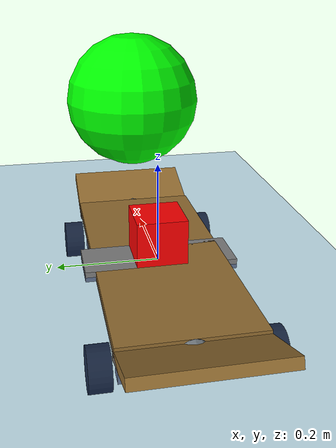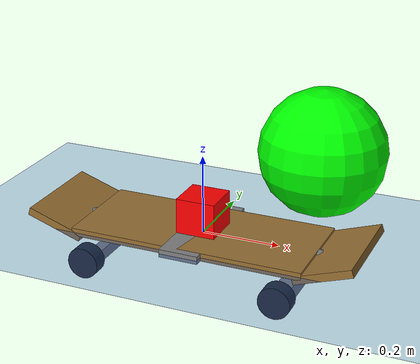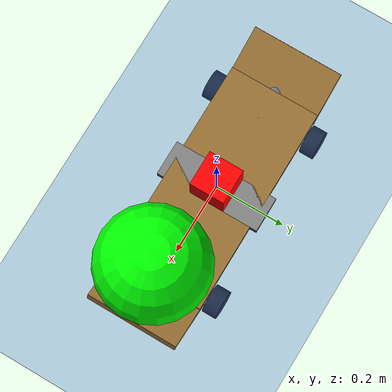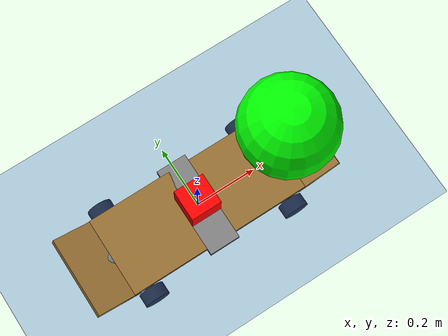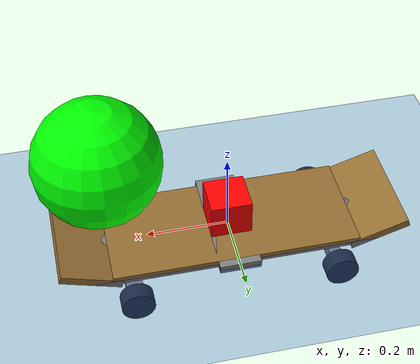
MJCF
<mujoco model="Skateboard NoRider">
  <include file="../../common.xml"/>
  <include file="../skateboard.xml" />
  <size memory="800K"/>

  <custom>
    <numeric name="agent_planner" data="3" />
    <numeric name="agent_horizon" data="1.35" />
    <numeric name="agent_timestep" data="0.015" />
    <numeric name="sampling_spline_points" data="3" />
    <numeric name="sampling_exploration" data="0.05" />
    <numeric name="gradient_spline_points" data="5" />
    <numeric name="residual_Heading" data="0.0 -1.57079 +1.57079" />
    <numeric name="residual_Velocity" data="0.0 -3 +3" />
  </custom>

  <default>
    <default class="wheel-spin">
        <joint type="hinge" axis="0 1 0" limited="false"  damping="1" stiffness="50" />
        <motor ctrllimited="true" ctrlrange="-1 1" gear="5"/>
      </default>
    <default class="no-rider">
      <default class="no-rider-slider">
          <joint type="slide" limited="true" stiffness="0" damping="1" frictionloss="0" armature="0" range="-0.1 0.1"/>
        <motor ctrllimited="true" ctrlrange="-1 1" gear="200" />
      </default>
      <default class="no-rider-ball">
        <joint type="ball" limited="false" damping="3"/>
      </default>
    </default>
  </default>

  <worldbody>
    <camera name="side" mode="trackcom" pos="-3.794 -2.634 2.085" xyaxes="0.536 -0.844 0.000 0.294 0.187 0.937"/>
    <camera name="close" mode="trackcom"  pos="-1.695 -1.870 1.312" xyaxes="0.702 -0.713 -0.000 0.261 0.257 0.930"/>
    <camera name="top" mode="trackcom" pos="-0.405 -1.688 20.714" xyaxes="-0.008 -1.000 0.000 1.000 -0.008 0.017"/>

    <body name="goal" mocap="true" pos=".3 0 0.26">
      <geom size="0.15" contype="0" conaffinity="0" rgba="0 1 0 1" group="2"/>
    </body>
    <geom name="floor" type="plane" conaffinity="1" size="50 50 .05" material="blue_grid"/>

    <body name="no-rider" pos="0 0 0" childclass="no-rider">
      <geom name="no-rider" type="box" size="0.05 0.15 0.01"  mass="1"/>
      <freejoint/>
      <!-- y-axis slider for weight transfer -->
      <body name="weight-slider" pos="0 0 0.05">
        <geom name="no-rider-weight" type="box" size="0.05 0.05 0.05"  mass="40.8" rgba="1 0 0 1"/>  <!-- `40.8` for the mass of humanoid -->
        <joint name="no-rider-y" axis="0 1 0" class="no-rider-slider"/>
      </body>
    </body>
  </worldbody>

  <equality>
    <!-- weld to board_center for balancing-->
    <weld body1="no-rider" body2="board_center" relpose="0 1 0 0 0 0 0" anchor="0 0 0"/>
  </equality>

  <sensor>
    <user name="Velocity" dim="1" user="0 10.0 0 100.0" />
    <user name="Goal Position" dim="3" user="2 0.2 0 0.5 0.1" />
    <user name="Goal Orientation" dim="1" user="0 10.0 0 100.0" />

    <user name="Upright" dim="1" user="0 10.0 0 100.0" />

    <user name="Joint Vel." dim="3" user="0 0 0.0 0.1" />
    <user name="Control" dim="2" user="3 0.03 0.0 0.1 0.3" />

    <framepos name="trace0" objtype="body" objname="board"/>
    <framelinvel name="board_linvel" objtype="body" objname="board" />
    <frameangvel name="board_angvel" objtype="body" objname="board"/>
  </sensor>

  <actuator>
    <!-- Control the y-translation of the cube for weight shift -->
    <motor name="no-rider-y" joint="no-rider-y" class="no-rider-slider" />
    <motor name="wheel-front-left" joint="wheel-front-left" class="wheel-spin" />
  </actuator>

   <keyframe>
    <key name="home" qpos='5.43295e-05 0.0118274 0.138635 1 -0.000151644 -3.16902e-10 -4.3344e-06 0.00375642 0.00278779 0.686686 0.838409 0.00278779 -0.683914 -0.835796 5.42464e-05 0.0151123 0.15811 0.999997 0.00234836 -1.62942e-08 -2.05345e-06 -0.0167769'/>
  </keyframe>

</mujoco>

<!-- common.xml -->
<mujoco>

    <visual>
        <headlight ambient=".4 .4 .4" diffuse=".8 .8 .8" specular="0.1 0.1 0.1"/>
        <map znear=".01"/>
        <quality shadowsize="2048"/>
        <global elevation="-15"/>
    </visual>

    <asset>
        <texture name="blue_grid" type="2d" builtin="checker" rgb1=".02 .14 .44" rgb2=".27 .55 1" width="300" height="300" mark="edge" markrgb="1 1 1"/>
        <material name="blue_grid" texture="blue_grid" texrepeat="1 1" texuniform="true" reflectance=".2"/>

        <texture name="grey_grid" type="2d" builtin="checker" rgb1=".26 .26 .26" rgb2=".6 .6 .6" width="300" height="300" mark="edge" markrgb="1 1 1"/>
        <material name="grey_grid" texture="grey_grid" texrepeat="1 1" texuniform="true" reflectance=".2"/>
        <texture name="skybox" type="skybox" builtin="gradient" rgb1=".66 .79 1" rgb2=".9 .91 .93" width="800" height="800"/>

        <material name="self" rgba=".7 .5 .3 1"/>
        <material name="self_default" rgba=".7 .5 .3 1"/>
        <material name="self_highlight" rgba="0 .5 .3 1"/>
        <material name="effector" rgba=".7 .4 .2 1"/>
        <material name="effector_default" rgba=".7 .4 .2 1"/>
        <material name="effector_highlight" rgba="0 .5 .3 1"/>
        <material name="decoration" rgba=".2 .6 .3 1"/>
        <material name="eye" rgba="0 .2 1 1"/>
        <material name="target" rgba=".6 .3 .3 1"/>
        <material name="target_default" rgba=".6 .3 .3 1"/>
        <material name="target_highlight" rgba=".6 .3 .3 .4"/>
        <material name="site" rgba=".5 .5 .5 .3"/>
    </asset>

    <size memory="1M"/>

    <statistic extent="0.4" center="0.3 0.1 0"/>

    <visual>
        <quality shadowsize="8192"/>
        <global azimuth="180" elevation="-30"/>
    </visual>

    <default>
        <geom friction="1.0"/>
    </default>

    <compiler angle="radian" autolimits="true"/>

    <asset>
        <mesh name="apple" file="../../shared_assets/apple/apple.obj" />
        <mesh name="apple_contact0" file="../../shared_assets/apple/contact0.stl"  />
        <mesh name="apple_contact1" file="../../shared_assets/apple/contact1.stl"  />

        <mesh name="doorknob" file="../../shared_assets/doorknob/doorknob.obj" />

        <mesh name="flashlight" file="../../shared_assets/flashlight/flashlight.obj" />
        <mesh name="flashlight_contact0" file="../../shared_assets/flashlight/contact0.stl"  />
        <mesh name="flashlight_contact1" file="../../shared_assets/flashlight/contact1.stl"  />

        <mesh name="hammer" file="../../shared_assets/hammer/hammer.obj" />
        <mesh name="hammer_contact0" file="../../shared_assets/hammer/contact0.stl"  />
        <mesh name="hammer_contact1" file="../../shared_assets/hammer/contact1.stl"  />

        <mesh name="phone" file="../../shared_assets/phone/phone.obj" />
        <mesh name="phone_contact0" file="../../shared_assets/phone/contact0.stl"  />
        <mesh name="phone_contact1" file="../../shared_assets/phone/contact1.stl"  />
        <mesh name="phone_contact2" file="../../shared_assets/phone/contact2.stl"  />

        <mesh name="stapler" file="../../shared_assets/stapler/stapler.obj" />
        <mesh name="stapler_contact0" file="../../shared_assets/stapler/contact0.stl"  />
        <mesh name="stapler_contact1" file="../../shared_assets/stapler/contact1.stl"  />
        <mesh name="stapler_contact2" file="../../shared_assets/stapler/contact2.stl"  />
        <mesh name="stapler_contact3" file="../../shared_assets/stapler/contact3.stl"  />
        <mesh name="stapler_contact4" file="../../shared_assets/stapler/contact4.stl"  />

        <mesh name="waterbottle" file="../../shared_assets/waterbottle/waterbottle.obj" />
        <mesh name="waterbottle_contact0" file="../../shared_assets/waterbottle/contact0.stl"  />
        <mesh name="waterbottle_contact1" file="../../shared_assets/waterbottle/contact1.stl"  />
    </asset>

</mujoco>

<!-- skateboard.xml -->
<mujoco model="skateboard">
  <default>
    <default class="skateboard">
      <default class="truck">
        <geom type="capsule" size="0.03" rgba="0.4414 0.4727 0.4922 1"/>
      </default>
      <default class="hanger">
        <geom type="capsule" fromto="0.0 0.1 -0.05 0.0 -0.1 -0.05" size="0.015" rgba="0.4414 0.4727 0.4922 1"/>
      </default>
      <default class="wheel">
        <geom type="sphere" size="0.03" rgba="0.8867 0.2383 0.5781 1"/>
      </default>
      <default class="board-base-ball">
        <default class="board-slider">
          <joint type="slide" limited="false" stiffness="0" damping="1" frictionloss="0" armature="0"/>
          <motor ctrllimited="true" ctrlrange="-1 1" gear="50" />
        </default>
        <default class="board-ball">
          <joint type="ball" limited="false" damping="3"/>
        </default>
      </default>

      <default class="hanger-rotate">
        <joint type="hinge" axis="0 0 1" range="-1 1" limited="true" damping="2" stiffness="50"/>
      </default>
      <default class="hanger-rotate-back">
        <joint type="hinge" axis="0 0 -1" range="-1 1" limited="true" damping="2" stiffness="50"/>
      </default>
      <default class="board-tilt">
        <joint type="hinge" axis="-1 0 0" range="-10 10" limited="true" springdamper="10 10"/>
      </default>
    </default>

    <default class="tracking_site_board">
      <site type="sphere" size="0.027" rgba="1 0 0 1" group="3"/>
    </default>
  </default>

  <worldbody>
    <camera name="back-x" pos="-3 0 2" xyaxes="0 -1 0 1 0 2" mode="trackcom"/>
    <camera name="side-y" pos="0 -3 2" xyaxes="1 0 0 0 1 2" mode="trackcom"/>
    <camera name="far_chase" pos="-6.134 -6.556 5.138" xyaxes="0.746 -0.666 0.000 0.283 0.317 0.905" mode="trackcom"/>

    <body name="skateboard" pos="0 0 0">
      <freejoint/>
      <!-- board -->
      <body name="board">
        <joint name="board-tilt" class="board-tilt"/>
        <!-- joint board-tilt -->
        <body name="board_center">
          <geom name="board-base" type="box" friction="2 1 1" size="0.3 0.13 0.01" rgba="0.5859 0.4336 0.1992 1" />
        </body>
        <geom name="board-nose" type="box" friction="2 1 1" size="0.075 0.13 0.01" pos="0.35 0.0 0.01" quat="-0.9659 0 0.1588 0" rgba="0.5859 0.4336 0.1992 1"/>
        <geom name="board-tail" type="box" friction="2 1 1" size="0.075 0.13 0.01" pos="-0.35 0.0 0.01" quat="0.9659 0 0.1588 0" rgba="0.5859 0.4336 0.1992 1"/>
      </body>
      <!-- trucks -->
      <geom name="truck-nose" class="truck" fromto="0.20 0.0 -0.020 0.30 0.0 -0.020" mass="5"/>
      <geom name="truck-tail" class="truck" fromto="-0.20 0.0 -0.020 -0.30 0.0 -0.020" mass="5"/>

      <!-- Baseplate -->
      <body name="baseplate-front" pos="0.25 0.0 -0.01">
        <!-- rotate -->
        <body name="kingpin-front" pos="0 0 -0.01">
          <site name="track-front-plate" class="tracking_site_board"  pos="-0.05 0.00 0.05" />
          <geom type="capsule" fromto="0 0 0 0 0 -0.02" size="0.01" rgba="0.5 0.5 0.5 1"/>
          <joint name="hanger-rotate" class="hanger-rotate"/>
          <!-- Bushings and hanger -->
          <body name="bushings-and-hanger-front" pos="0 0 -0.02">
            <geom name="bottom-bushing-front" type="ellipsoid" size="0.03 0.03 0.01" rgba="1 0 0 1"/>
            <geom name="hanger-front" type="box" size="0.02 0.12 0.02" pos="0 0 -0.03" rgba="0.5 0.5 0.5 1"/>
            <!-- Wheels -->
            <body name="wheel-front-left" pos="0.0 0.15 -0.02" >
              <joint name="wheel-front-left" type="hinge" axis="0 1 0"/>
              <geom type="cylinder" friction="1 0.005 0.2" size="0.04 0.02" rgba="0.1 0.1 0.1 1" quat="0.707 0.707 0 0"/>

            </body>
            <body name="wheel-front-right" pos="0.0 -0.15 -0.02">
              <joint name="wheel-front-right" type="hinge" axis="0 1 0"/>
              <geom type="cylinder" friction="1 0.005 0.2" size="0.04 0.02" rgba="0.1 0.1 0.1 1" quat="0.707 0.707 0 0"/>
            </body>
          </body>
        </body>
      </body>
      <!-- identical but for back truck -->
      <body name="baseplate-back" pos="-0.25 0.0 -0.01">
        <body name="kingpin-back" pos="0 0 -0.01">
          <site name="track-back-plate" class="tracking_site_board"  pos="0.05 0.00 0.05" />
          <geom type="capsule" fromto="0 0 0 0 0 -0.02" size="0.01" rgba="0.5 0.5 0.5 1"/>
          <joint name="hanger-rotate-back" class="hanger-rotate-back"/>
          <!-- Bushings and hanger -->
          <body name="bushings-and-hanger-back" pos="0 0 -0.02">
            <geom name="bottom-bushing-back" type="ellipsoid" size="0.03 0.03 0.01" rgba="1 0 0 1"/>
            <geom name="hanger-back" type="box" size="0.015 0.12 0.015" pos="0 0 -0.03" rgba="0.5 0.5 0.5 1"/>

            <!-- Wheels -->
            <body name="wheel-back-left" pos="0.0 0.15 -0.02">
              <joint name="wheel-back-left" type="hinge" axis="0 1 0"/>
              <geom type="cylinder" friction="1 0.005 0.2" size="0.04 0.02" rgba="0.1 0.1 0.1 1" quat="0.707 0.707 0 0"/>
            </body>
            <body name="wheel-back-right" pos="0.0 -0.15 -0.02">
              <joint name="wheel-back-right" type="hinge" axis="0 1 0"/>
              <geom type="cylinder" friction="1 0.005 0.2" size="0.04 0.02" rgba="0.1 0.1 0.1 1" quat="0.707 0.707 0 0"/>
            </body>
          </body>
        </body>
      </body>
    </body>
  </worldbody>
  <!-- equality/joint between hanger-rotate and hanger-rotate-back -->
  <equality>
    <joint joint1="board-tilt" joint2="hanger-rotate-back" polycoef="0 1 0 0 0"/>
    <joint joint1="board-tilt" joint2="hanger-rotate" polycoef="0 1 0 0 0"/>
    <!-- equal the wheel joints -->
    <joint joint1="wheel-front-left" joint2="wheel-front-right"/>
    <joint joint1="wheel-front-left" joint2="wheel-back-right"/>
    <joint joint1="wheel-front-left" joint2="wheel-back-left"/>
  </equality>
  <!-- exlude contact between all board parts,   trucks and kingpins and hangars -->
  <contact>
        <exclude body1="board" body2="baseplate-front"/>
        <exclude body1="board" body2="baseplate-back"/>
        <exclude body1="board" body2="wheel-front-left"/>
        <exclude body1="board" body2="wheel-front-right"/>
        <exclude body1="board" body2="wheel-back-left"/>
        <exclude body1="board" body2="wheel-back-right"/>
        <exclude body1="board" body2="kingpin-front"/>
        <exclude body1="board" body2="kingpin-back"/>
        <exclude body1="board" body2="bushings-and-hanger-front"/>
        <exclude body1="board" body2="bushings-and-hanger-back"/>

        <exclude body1="board_center" body2="baseplate-front"/>
        <exclude body1="board_center" body2="baseplate-back"/>
        <exclude body1="board_center" body2="wheel-front-left"/>
        <exclude body1="board_center" body2="wheel-front-right"/>
        <exclude body1="board_center" body2="wheel-back-left"/>
        <exclude body1="board_center" body2="wheel-back-right"/>
        <exclude body1="board_center" body2="kingpin-front"/>
        <exclude body1="board_center" body2="kingpin-back"/>
        <exclude body1="board_center" body2="bushings-and-hanger-front"/>
        <exclude body1="board_center" body2="bushings-and-hanger-back"/>

        <exclude body1="baseplate-front" body2="wheel-front-left"/>
        <exclude body1="baseplate-front" body2="wheel-front-right"/>
        <exclude body1="baseplate-front" body2="wheel-back-left"/>
        <exclude body1="baseplate-front" body2="wheel-back-right"/>
        <exclude body1="baseplate-back" body2="wheel-front-left"/>
        <exclude body1="baseplate-back" body2="wheel-front-right"/>
        <exclude body1="baseplate-back" body2="wheel-back-left"/>
        <exclude body1="baseplate-back" body2="wheel-back-right"/>
        <exclude body1="wheel-front-left" body2="wheel-front-right"/>
        <exclude body1="wheel-front-left" body2="wheel-back-left"/>
        <exclude body1="wheel-front-left" body2="wheel-back-right"/>
        <exclude body1="wheel-front-right" body2="wheel-back-left"/>
        <exclude body1="wheel-front-right" body2="wheel-back-right"/>
        <exclude body1="wheel-back-left" body2="wheel-back-right"/>
        <exclude body1="baseplate-front" body2="baseplate-back"/>
        <exclude body1="baseplate-front" body2="kingpin-front"/>
        <exclude body1="baseplate-front" body2="kingpin-back"/>
        <exclude body1="baseplate-front" body2="bushings-and-hanger-front"/>
        <exclude body1="baseplate-front" body2="bushings-and-hanger-back"/>
        <exclude body1="baseplate-back" body2="kingpin-front"/>
        <exclude body1="baseplate-back" body2="kingpin-back"/>
        <exclude body1="baseplate-back" body2="bushings-and-hanger-front"/>
        <exclude body1="baseplate-back" body2="bushings-and-hanger-back"/>
        <exclude body1="kingpin-front" body2="kingpin-back"/>
        <exclude body1="kingpin-front" body2="bushings-and-hanger-front"/>
        <exclude body1="kingpin-front" body2="bushings-and-hanger-back"/>
        <exclude body1="kingpin-back" body2="bushings-and-hanger-front"/>
        <exclude body1="kingpin-back" body2="bushings-and-hanger-back"/>
        <exclude body1="bushings-and-hanger-front" body2="bushings-and-hanger-back"/>
      </contact>
</mujoco>
